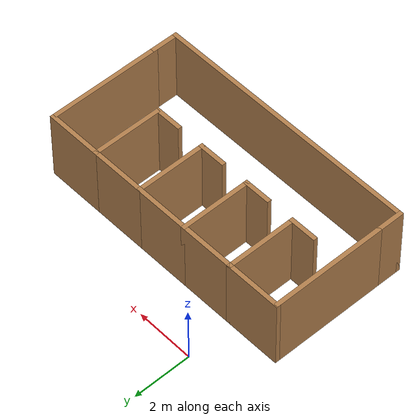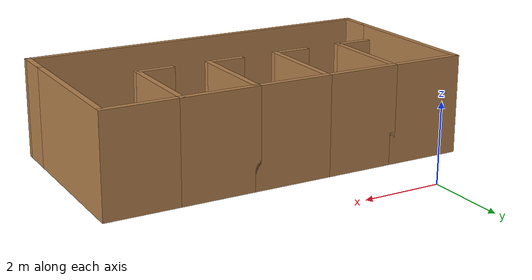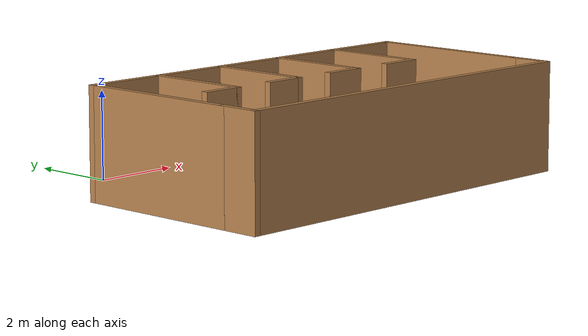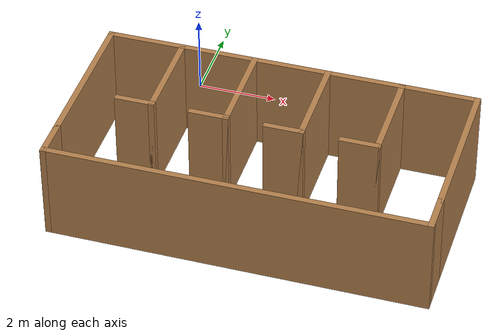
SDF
<?xml version='1.0'?>
<sdf version='1.7'>
  <model name='world'>
    <pose>2.91017 -3.22784 0 0 -0 0</pose>
    <link name='Wall_10'>
      <collision name='Wall_10_Collision'>
        <geometry>
          <box>
            <size>2 0.15 2.5</size>
          </box>
        </geometry>
        <pose>0 0 1.25 0 -0 0</pose>
      </collision>
      <visual name='Wall_10_Visual'>
        <pose>0 0 1.25 0 -0 0</pose>
        <geometry>
          <box>
            <size>2 0.15 2.5</size>
          </box>
        </geometry>
        <material>
          <script>
            <uri>file://media/materials/scripts/gazebo.material</uri>
            <name>Gazebo/Wood</name>
          </script>
          <ambient>1 1 1 1</ambient>
        </material>
        <meta>
          <layer>0</layer>
        </meta>
      </visual>
      <pose>-1.85 1.54716 0 0 -0 0</pose>
    </link>
    <link name='Wall_11'>
      <collision name='Wall_11_Collision'>
        <geometry>
          <box>
            <size>2.5 0.15 2.5</size>
          </box>
        </geometry>
        <pose>0 0 1.25 0 -0 0</pose>
      </collision>
      <visual name='Wall_11_Visual'>
        <pose>0 0 1.25 0 -0 0</pose>
        <geometry>
          <box>
            <size>2.5 0.15 2.5</size>
          </box>
        </geometry>
        <material>
          <script>
            <uri>file://media/materials/scripts/gazebo.material</uri>
            <name>Gazebo/Wood</name>
          </script>
          <ambient>1 1 1 1</ambient>
        </material>
        <meta>
          <layer>0</layer>
        </meta>
      </visual>
      <pose>-0.925 0.372155 0 0 -0 -1.5708</pose>
    </link>
    <link name='Wall_12'>
      <collision name='Wall_12_Collision'>
        <geometry>
          <box>
            <size>1 0.15 2.5</size>
          </box>
        </geometry>
        <pose>0 0 1.25 0 -0 0</pose>
      </collision>
      <visual name='Wall_12_Visual'>
        <pose>0 0 1.25 0 -0 0</pose>
        <geometry>
          <box>
            <size>1 0.15 2.5</size>
          </box>
        </geometry>
        <material>
          <script>
            <uri>file://media/materials/scripts/gazebo.material</uri>
            <name>Gazebo/Wood</name>
          </script>
          <ambient>1 1 1 1</ambient>
        </material>
        <meta>
          <layer>0</layer>
        </meta>
      </visual>
      <pose>-1.35 -0.802845 0 0 -0 3.14159</pose>
    </link>
    <link name='Wall_14'>
      <collision name='Wall_14_Collision'>
        <geometry>
          <box>
            <size>2 0.15 2.5</size>
          </box>
        </geometry>
        <pose>0 0 1.25 0 -0 0</pose>
      </collision>
      <visual name='Wall_14_Visual'>
        <pose>0 0 1.25 0 -0 0</pose>
        <geometry>
          <box>
            <size>2 0.15 2.5</size>
          </box>
        </geometry>
        <material>
          <script>
            <uri>file://media/materials/scripts/gazebo.material</uri>
            <name>Gazebo/Wood</name>
          </script>
          <ambient>1 1 1 1</ambient>
        </material>
        <meta>
          <layer>0</layer>
        </meta>
      </visual>
      <pose>0 1.54716 0 0 -0 0</pose>
    </link>
    <link name='Wall_15'>
      <collision name='Wall_15_Collision'>
        <geometry>
          <box>
            <size>2.5 0.15 2.5</size>
          </box>
        </geometry>
        <pose>0 0 1.25 0 -0 0</pose>
      </collision>
      <visual name='Wall_15_Visual'>
        <pose>0 0 1.25 0 -0 0</pose>
        <geometry>
          <box>
            <size>2.5 0.15 2.5</size>
          </box>
        </geometry>
        <material>
          <script>
            <uri>file://media/materials/scripts/gazebo.material</uri>
            <name>Gazebo/Wood</name>
          </script>
          <ambient>1 1 1 1</ambient>
        </material>
        <meta>
          <layer>0</layer>
        </meta>
      </visual>
      <pose>0.925 0.372155 0 0 -0 -1.5708</pose>
    </link>
    <link name='Wall_16'>
      <collision name='Wall_16_Collision'>
        <geometry>
          <box>
            <size>1 0.15 2.5</size>
          </box>
        </geometry>
        <pose>0 0 1.25 0 -0 0</pose>
      </collision>
      <visual name='Wall_16_Visual'>
        <pose>0 0 1.25 0 -0 0</pose>
        <geometry>
          <box>
            <size>1 0.15 2.5</size>
          </box>
        </geometry>
        <material>
          <script>
            <uri>file://media/materials/scripts/gazebo.material</uri>
            <name>Gazebo/Wood</name>
          </script>
          <ambient>1 1 1 1</ambient>
        </material>
        <meta>
          <layer>0</layer>
        </meta>
      </visual>
      <pose>0.5 -0.802845 0 0 -0 3.14159</pose>
    </link>
    <link name='Wall_18'>
      <collision name='Wall_18_Collision'>
        <geometry>
          <box>
            <size>2 0.15 2.5</size>
          </box>
        </geometry>
        <pose>0 0 1.25 0 -0 0</pose>
      </collision>
      <visual name='Wall_18_Visual'>
        <pose>0 0 1.25 0 -0 0</pose>
        <geometry>
          <box>
            <size>2 0.15 2.5</size>
          </box>
        </geometry>
        <material>
          <script>
            <uri>file://media/materials/scripts/gazebo.material</uri>
            <name>Gazebo/Wood</name>
          </script>
          <ambient>1 1 1 1</ambient>
        </material>
        <meta>
          <layer>0</layer>
        </meta>
      </visual>
      <pose>1.85 1.54716 0 0 -0 0</pose>
    </link>
    <link name='Wall_19'>
      <collision name='Wall_19_Collision'>
        <geometry>
          <box>
            <size>2.5 0.15 2.5</size>
          </box>
        </geometry>
        <pose>0 0 1.25 0 -0 0</pose>
      </collision>
      <visual name='Wall_19_Visual'>
        <pose>0 0 1.25 0 -0 0</pose>
        <geometry>
          <box>
            <size>2.5 0.15 2.5</size>
          </box>
        </geometry>
        <material>
          <script>
            <uri>file://media/materials/scripts/gazebo.material</uri>
            <name>Gazebo/Wood</name>
          </script>
          <ambient>1 1 1 1</ambient>
        </material>
        <meta>
          <layer>0</layer>
        </meta>
      </visual>
      <pose>2.775 0.372155 0 0 -0 -1.5708</pose>
    </link>
    <link name='Wall_20'>
      <collision name='Wall_20_Collision'>
        <geometry>
          <box>
            <size>1 0.15 2.5</size>
          </box>
        </geometry>
        <pose>0 0 1.25 0 -0 0</pose>
      </collision>
      <visual name='Wall_20_Visual'>
        <pose>0 0 1.25 0 -0 0</pose>
        <geometry>
          <box>
            <size>1 0.15 2.5</size>
          </box>
        </geometry>
        <material>
          <script>
            <uri>file://media/materials/scripts/gazebo.material</uri>
            <name>Gazebo/Wood</name>
          </script>
          <ambient>1 1 1 1</ambient>
        </material>
        <meta>
          <layer>0</layer>
        </meta>
      </visual>
      <pose>2.35 -0.802845 0 0 -0 3.14159</pose>
    </link>
    <link name='Wall_23'>
      <collision name='Wall_23_Collision'>
        <geometry>
          <box>
            <size>2 0.15 2.5</size>
          </box>
        </geometry>
        <pose>0 0 1.25 0 -0 0</pose>
      </collision>
      <visual name='Wall_23_Visual'>
        <pose>0 0 1.25 0 -0 0</pose>
        <geometry>
          <box>
            <size>2 0.15 2.5</size>
          </box>
        </geometry>
        <material>
          <script>
            <uri>file://media/materials/scripts/gazebo.material</uri>
            <name>Gazebo/Wood</name>
          </script>
          <ambient>1 1 1 1</ambient>
        </material>
        <meta>
          <layer>0</layer>
        </meta>
      </visual>
      <pose>3.7 1.54716 0 0 -0 0</pose>
    </link>
    <link name='Wall_24'>
      <collision name='Wall_24_Collision'>
        <geometry>
          <box>
            <size>4 0.15 2.5</size>
          </box>
        </geometry>
        <pose>0 0 1.25 0 -0 0</pose>
      </collision>
      <visual name='Wall_24_Visual'>
        <pose>0 0 1.25 0 -0 0</pose>
        <geometry>
          <box>
            <size>4 0.15 2.5</size>
          </box>
        </geometry>
        <material>
          <script>
            <uri>file://media/materials/scripts/gazebo.material</uri>
            <name>Gazebo/Wood</name>
          </script>
          <ambient>1 1 1 1</ambient>
        </material>
        <meta>
          <layer>0</layer>
        </meta>
      </visual>
      <pose>4.625 -0.377845 0 0 -0 -1.5708</pose>
    </link>
    <link name='Wall_28'>
      <collision name='Wall_28_Collision'>
        <geometry>
          <box>
            <size>1 0.15 2.5</size>
          </box>
        </geometry>
        <pose>0 0 1.25 0 -0 0</pose>
      </collision>
      <visual name='Wall_28_Visual'>
        <pose>0 0 1.25 0 -0 0</pose>
        <geometry>
          <box>
            <size>1 0.15 2.5</size>
          </box>
        </geometry>
        <material>
          <script>
            <uri>file://media/materials/scripts/gazebo.material</uri>
            <name>Gazebo/Wood</name>
          </script>
          <ambient>1 1 1 1</ambient>
        </material>
        <meta>
          <layer>0</layer>
        </meta>
      </visual>
      <pose>-4.625 -2.72784 0 0 -0 -1.5708</pose>
    </link>
    <link name='Wall_3'>
      <collision name='Wall_3_Collision'>
        <geometry>
          <box>
            <size>4 0.15 2.5</size>
          </box>
        </geometry>
        <pose>0 0 1.25 0 -0 0</pose>
      </collision>
      <visual name='Wall_3_Visual'>
        <pose>0 0 1.25 0 -0 0</pose>
        <geometry>
          <box>
            <size>4 0.15 2.5</size>
          </box>
        </geometry>
        <material>
          <script>
            <uri>file://media/materials/scripts/gazebo.material</uri>
            <name>Gazebo/Wood</name>
          </script>
          <ambient>1 1 1 1</ambient>
        </material>
        <meta>
          <layer>0</layer>
        </meta>
      </visual>
      <pose>-4.625 -0.377845 0 0 -0 -1.5708</pose>
    </link>
    <link name='Wall_30'>
      <collision name='Wall_30_Collision'>
        <geometry>
          <box>
            <size>1 0.15 2.5</size>
          </box>
        </geometry>
        <pose>0 0 1.25 0 -0 0</pose>
      </collision>
      <visual name='Wall_30_Visual'>
        <pose>0 0 1.25 0 -0 0</pose>
        <geometry>
          <box>
            <size>1 0.15 2.5</size>
          </box>
        </geometry>
        <material>
          <script>
            <uri>file://media/materials/scripts/gazebo.material</uri>
            <name>Gazebo/Wood</name>
          </script>
          <ambient>1 1 1 1</ambient>
        </material>
        <meta>
          <layer>0</layer>
        </meta>
      </visual>
      <pose>4.625 -2.72784 0 0 -0 -1.5708</pose>
    </link>
    <link name='Wall_31'>
      <collision name='Wall_31_Collision'>
        <geometry>
          <box>
            <size>9.4 0.15 2.5</size>
          </box>
        </geometry>
        <pose>0 0 1.25 0 -0 0</pose>
      </collision>
      <visual name='Wall_31_Visual'>
        <pose>0 0 1.25 0 -0 0</pose>
        <geometry>
          <box>
            <size>9.4 0.15 2.5</size>
          </box>
        </geometry>
        <material>
          <script>
            <uri>file://media/materials/scripts/gazebo.material</uri>
            <name>Gazebo/Wood</name>
          </script>
          <ambient>1 1 1 1</ambient>
        </material>
        <meta>
          <layer>0</layer>
        </meta>
      </visual>
      <pose>0 -3.15284 0 0 -0 3.14159</pose>
    </link>
    <link name='Wall_5'>
      <collision name='Wall_5_Collision'>
        <geometry>
          <box>
            <size>2 0.15 2.5</size>
          </box>
        </geometry>
        <pose>0 0 1.25 0 -0 0</pose>
      </collision>
      <visual name='Wall_5_Visual'>
        <pose>0 0 1.25 0 -0 0</pose>
        <geometry>
          <box>
            <size>2 0.15 2.5</size>
          </box>
        </geometry>
        <material>
          <script>
            <uri>file://media/materials/scripts/gazebo.material</uri>
            <name>Gazebo/Wood</name>
          </script>
          <ambient>1 1 1 1</ambient>
        </material>
        <meta>
          <layer>0</layer>
        </meta>
      </visual>
      <pose>-3.7 1.54716 0 0 -0 0</pose>
    </link>
    <link name='Wall_7'>
      <collision name='Wall_7_Collision'>
        <geometry>
          <box>
            <size>2.5 0.15 2.5</size>
          </box>
        </geometry>
        <pose>0 0 1.25 0 -0 0</pose>
      </collision>
      <visual name='Wall_7_Visual'>
        <pose>0 0 1.25 0 -0 0</pose>
        <geometry>
          <box>
            <size>2.5 0.15 2.5</size>
          </box>
        </geometry>
        <material>
          <script>
            <uri>file://media/materials/scripts/gazebo.material</uri>
            <name>Gazebo/Wood</name>
          </script>
          <ambient>1 1 1 1</ambient>
        </material>
        <meta>
          <layer>0</layer>
        </meta>
      </visual>
      <pose>-2.775 0.372155 0 0 -0 -1.5708</pose>
    </link>
    <link name='Wall_8'>
      <collision name='Wall_8_Collision'>
        <geometry>
          <box>
            <size>1 0.15 2.5</size>
          </box>
        </geometry>
        <pose>0 0 1.25 0 -0 0</pose>
      </collision>
      <visual name='Wall_8_Visual'>
        <pose>0 0 1.25 0 -0 0</pose>
        <geometry>
          <box>
            <size>1 0.15 2.5</size>
          </box>
        </geometry>
        <material>
          <script>
            <uri>file://media/materials/scripts/gazebo.material</uri>
            <name>Gazebo/Wood</name>
          </script>
          <ambient>1 1 1 1</ambient>
        </material>
        <meta>
          <layer>0</layer>
        </meta>
      </visual>
      <pose>-3.2 -0.802845 0 0 -0 3.14159</pose>
    </link>
    <static>1</static>
  </model>
</sdf>
